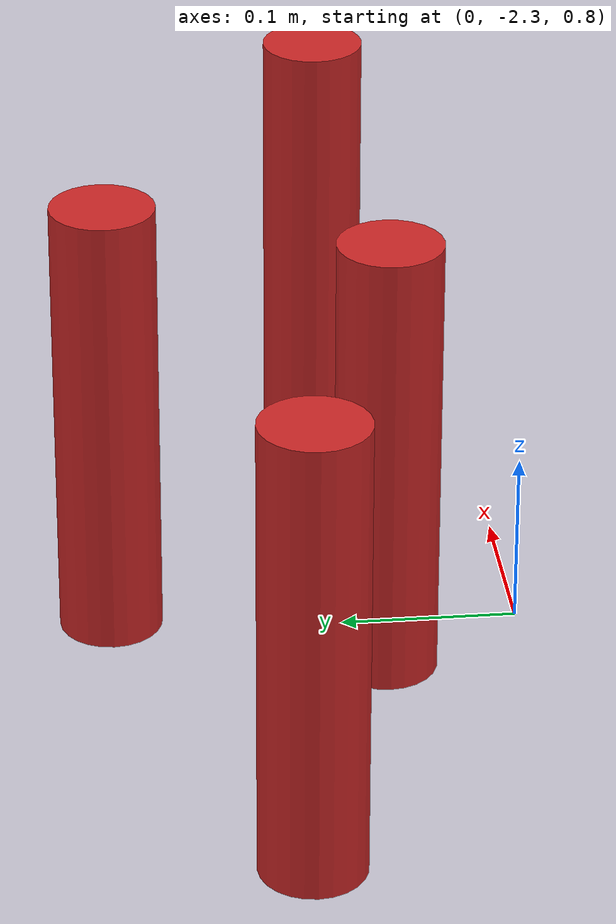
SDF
<sdf version="1.7">
 <world name="default">
  <model name="ground_plane">
   <static>1</static>
   <link name="link_ground_plane">
    <collision name="collision">
     <geometry><plane><normal>0 0 1</normal><size>10 10</size></plane></geometry>
    </collision>
   </link>
  </model>
  <model name="pipette">
   <link name="link">
    <inertial>
     <mass>1</mass>
     <inertia><ixx>0.145833</ixx><ixy>0</ixy><ixz>0</ixz><iyy>0.145833</iyy><iyz>0</iyz><izz>0.125</izz></inertia>
    </inertial>
    <visual name="visual">
     <geometry><cylinder><radius>0.0297413</radius><length>0.26554</length></cylinder></geometry>
     <material>
      <script><name>Gazebo/Red</name><uri>file://media/materials/scripts/gazebo.material</uri></script>
      <shader type="pixel"><normal_map>__default__</normal_map></shader>
      <ambient>1 0 0 1</ambient>
      <diffuse>1 0 0 1</diffuse>
      <specular>0.1 0.1 0.1 1</specular>
      <emissive>0 0 0 1</emissive>
     </material>
    </visual>
    <collision name="collision">
     <geometry><cylinder><radius>0.029741</radius><length>0.26554</length></cylinder></geometry>
     <surface>
      <friction>
       <ode><mu>1</mu><mu2>1</mu2><fdir1>0 0 0</fdir1><slip1>0</slip1><slip2>0</slip2></ode>
       <torsional>
        <coefficient>1</coefficient>
        <patch_radius>0</patch_radius>
        <surface_radius>0</surface_radius>
        <use_patch_radius>1</use_patch_radius>
        <ode><slip>0</slip></ode>
       </torsional>
      </friction>
      <bounce><restitution_coefficient>0</restitution_coefficient><threshold>1e+06</threshold></bounce>
      <contact>
       <collide_without_contact>0</collide_without_contact>
       <collide_without_contact_bitmask>1</collide_without_contact_bitmask>
       <collide_bitmask>1</collide_bitmask>
       <ode>
        <soft_cfm>0</soft_cfm>
        <soft_erp>0.2</soft_erp>
        <kp>1e+13</kp>
        <kd>1</kd>
        <max_vel>0.01</max_vel>
        <min_depth>0</min_depth>
       </ode>
       <bullet>
        <split_impulse>1</split_impulse>
        <split_impulse_penetration_threshold>-0.01</split_impulse_penetration_threshold>
        <soft_cfm>0</soft_cfm>
        <soft_erp>0.2</soft_erp>
        <kp>1e+13</kp>
        <kd>1</kd>
       </bullet>
      </contact>
     </surface>
    </collision>
   </link>
   <static>0</static>
   <pose>-0.016501 -2.22312 0.915248 -5.8e-05 8.6e-05 -3.3e-05</pose>
  </model>
  <model name="pipette_clone_1">
   <link name="link">
    <inertial>
     <mass>1</mass>
     <inertia><ixx>0.145833</ixx><ixy>0</ixy><ixz>0</ixz><iyy>0.145833</iyy><iyz>0</iyz><izz>0.125</izz></inertia>
    </inertial>
    <visual name="visual">
     <geometry><cylinder><radius>0.0297413</radius><length>0.26554</length></cylinder></geometry>
     <material>
      <script><name>Gazebo/Red</name><uri>file://media/materials/scripts/gazebo.material</uri></script>
      <shader type="pixel"><normal_map>__default__</normal_map></shader>
      <ambient>1 0 0 1</ambient>
      <diffuse>1 0 0 1</diffuse>
      <specular>0.1 0.1 0.1 1</specular>
      <emissive>0 0 0 1</emissive>
     </material>
    </visual>
    <collision name="collision">
     <geometry><cylinder><radius>0.029741</radius><length>0.26554</length></cylinder></geometry>
     <surface>
      <friction>
       <ode><mu>1</mu><mu2>1</mu2><fdir1>0 0 0</fdir1><slip1>0</slip1><slip2>0</slip2></ode>
       <torsional>
        <coefficient>1</coefficient>
        <patch_radius>0</patch_radius>
        <surface_radius>0</surface_radius>
        <use_patch_radius>1</use_patch_radius>
        <ode><slip>0</slip></ode>
       </torsional>
      </friction>
      <bounce><restitution_coefficient>0</restitution_coefficient><threshold>1e+06</threshold></bounce>
      <contact>
       <collide_without_contact>0</collide_without_contact>
       <collide_without_contact_bitmask>1</collide_without_contact_bitmask>
       <collide_bitmask>1</collide_bitmask>
       <ode>
        <soft_cfm>0</soft_cfm>
        <soft_erp>0.2</soft_erp>
        <kp>1e+13</kp>
        <kd>1</kd>
        <max_vel>0.01</max_vel>
        <min_depth>0</min_depth>
       </ode>
       <bullet>
        <split_impulse>1</split_impulse>
        <split_impulse_penetration_threshold>-0.01</split_impulse_penetration_threshold>
        <soft_cfm>0</soft_cfm>
        <soft_erp>0.2</soft_erp>
        <kp>1e+13</kp>
        <kd>1</kd>
       </bullet>
      </contact>
     </surface>
    </collision>
   </link>
   <static>0</static>
   <pose>-0.215096 -2.16045 0.915262 -6.5e-05 9.3e-05 -3.3e-05</pose>
  </model>
  <model name="pipette_clone_4">
   <link name="link">
    <inertial>
     <mass>1</mass>
     <inertia><ixx>0.145833</ixx><ixy>0</ixy><ixz>0</ixz><iyy>0.145833</iyy><iyz>0</iyz><izz>0.125</izz></inertia>
    </inertial>
    <visual name="visual">
     <geometry><cylinder><radius>0.0297413</radius><length>0.26554</length></cylinder></geometry>
     <material>
      <script><name>Gazebo/Red</name><uri>file://media/materials/scripts/gazebo.material</uri></script>
      <shader type="pixel"><normal_map>__default__</normal_map></shader>
      <ambient>1 0 0 1</ambient>
      <diffuse>1 0 0 1</diffuse>
      <specular>0.1 0.1 0.1 1</specular>
      <emissive>0 0 0 1</emissive>
     </material>
    </visual>
    <collision name="collision">
     <geometry><cylinder><radius>0.029741</radius><length>0.26554</length></cylinder></geometry>
     <surface>
      <friction>
       <ode><mu>1</mu><mu2>1</mu2><fdir1>0 0 0</fdir1><slip1>0</slip1><slip2>0</slip2></ode>
       <torsional>
        <coefficient>1</coefficient>
        <patch_radius>0</patch_radius>
        <surface_radius>0</surface_radius>
        <use_patch_radius>1</use_patch_radius>
        <ode><slip>0</slip></ode>
       </torsional>
      </friction>
      <bounce><restitution_coefficient>0</restitution_coefficient><threshold>1e+06</threshold></bounce>
      <contact>
       <collide_without_contact>0</collide_without_contact>
       <collide_without_contact_bitmask>1</collide_without_contact_bitmask>
       <collide_bitmask>1</collide_bitmask>
       <ode>
        <soft_cfm>0</soft_cfm>
        <soft_erp>0.2</soft_erp>
        <kp>1e+13</kp>
        <kd>1</kd>
        <max_vel>0.01</max_vel>
        <min_depth>0</min_depth>
       </ode>
       <bullet>
        <split_impulse>1</split_impulse>
        <split_impulse_penetration_threshold>-0.01</split_impulse_penetration_threshold>
        <soft_cfm>0</soft_cfm>
        <soft_erp>0.2</soft_erp>
        <kp>1e+13</kp>
        <kd>1</kd>
       </bullet>
      </contact>
     </surface>
    </collision>
   </link>
   <static>0</static>
   <pose>0.044734 -2.07053 0.915229 -7.4e-05 8.8e-05 -3.4e-05</pose>
  </model>
  <model name="pipette_clone_9">
   <link name="link">
    <inertial>
     <mass>1</mass>
     <inertia><ixx>0.145833</ixx><ixy>0</ixy><ixz>0</ixz><iyy>0.145833</iyy><iyz>0</iyz><izz>0.125</izz></inertia>
    </inertial>
    <visual name="visual">
     <geometry><cylinder><radius>0.0297413</radius><length>0.26554</length></cylinder></geometry>
     <material>
      <script><name>Gazebo/Red</name><uri>file://media/materials/scripts/gazebo.material</uri></script>
      <shader type="pixel"><normal_map>__default__</normal_map></shader>
      <ambient>1 0 0 1</ambient>
      <diffuse>1 0 0 1</diffuse>
      <specular>0.1 0.1 0.1 1</specular>
      <emissive>0 0 0 1</emissive>
     </material>
    </visual>
    <collision name="collision">
     <geometry><cylinder><radius>0.029741</radius><length>0.26554</length></cylinder></geometry>
     <surface>
      <friction>
       <ode><mu>1</mu><mu2>1</mu2><fdir1>0 0 0</fdir1><slip1>0</slip1><slip2>0</slip2></ode>
       <torsional>
        <coefficient>1</coefficient>
        <patch_radius>0</patch_radius>
        <surface_radius>0</surface_radius>
        <use_patch_radius>1</use_patch_radius>
        <ode><slip>0</slip></ode>
       </torsional>
      </friction>
      <bounce><restitution_coefficient>0</restitution_coefficient><threshold>1e+06</threshold></bounce>
      <contact>
       <collide_without_contact>0</collide_without_contact>
       <collide_without_contact_bitmask>1</collide_without_contact_bitmask>
       <collide_bitmask>1</collide_bitmask>
       <ode>
        <soft_cfm>0</soft_cfm>
        <soft_erp>0.2</soft_erp>
        <kp>1e+13</kp>
        <kd>1</kd>
        <max_vel>0.01</max_vel>
        <min_depth>0</min_depth>
       </ode>
       <bullet>
        <split_impulse>1</split_impulse>
        <split_impulse_penetration_threshold>-0.01</split_impulse_penetration_threshold>
        <soft_cfm>0</soft_cfm>
        <soft_erp>0.2</soft_erp>
        <kp>1e+13</kp>
        <kd>1</kd>
       </bullet>
      </contact>
     </surface>
    </collision>
   </link>
   <static>0</static>
   <pose>0.262268 -2.21034 0.915217 -0.000373 0.000397 -3.4e-05</pose>
  </model>
 </world>
</sdf>
